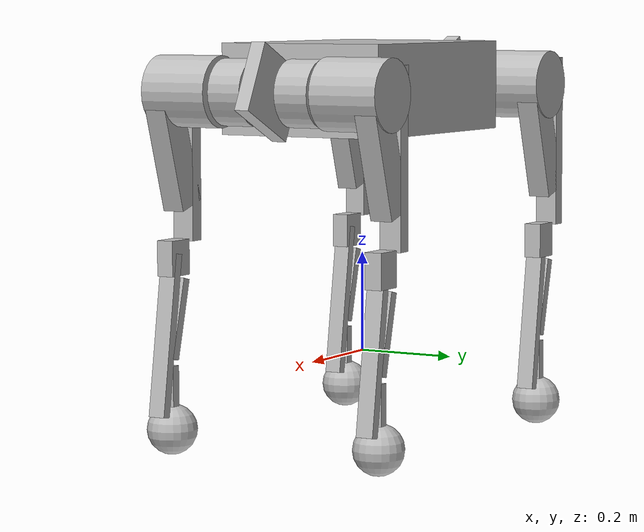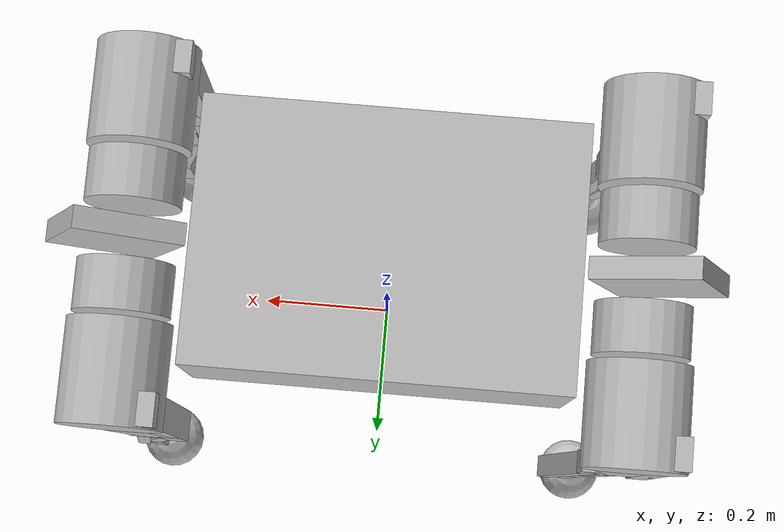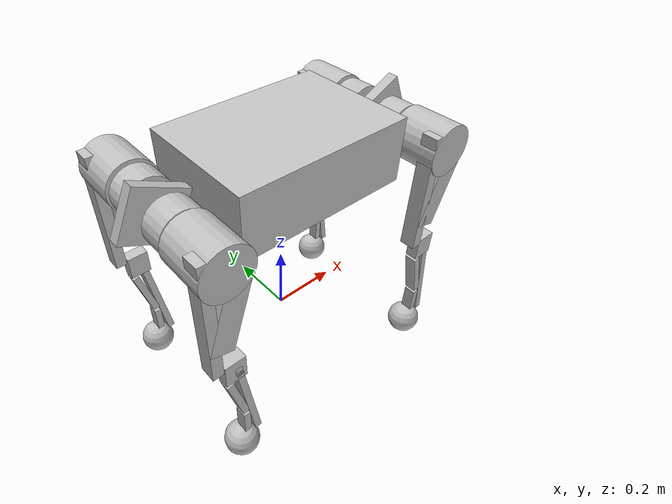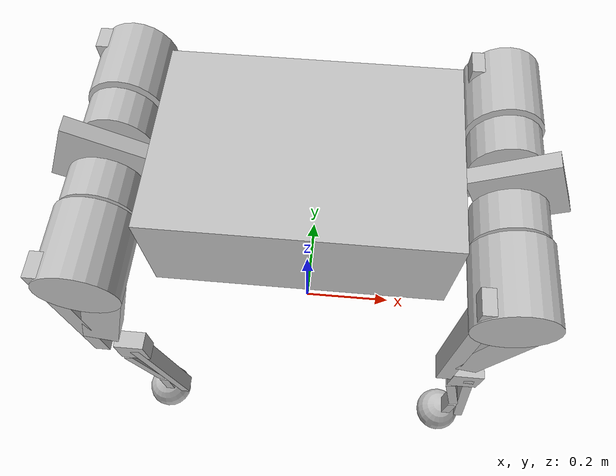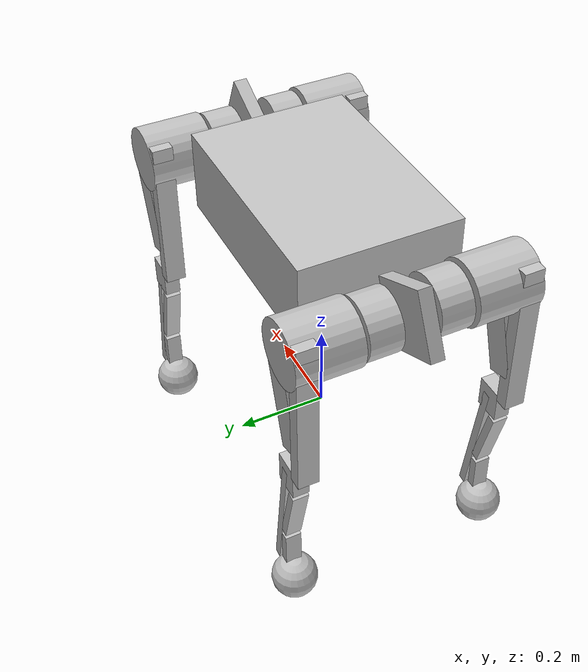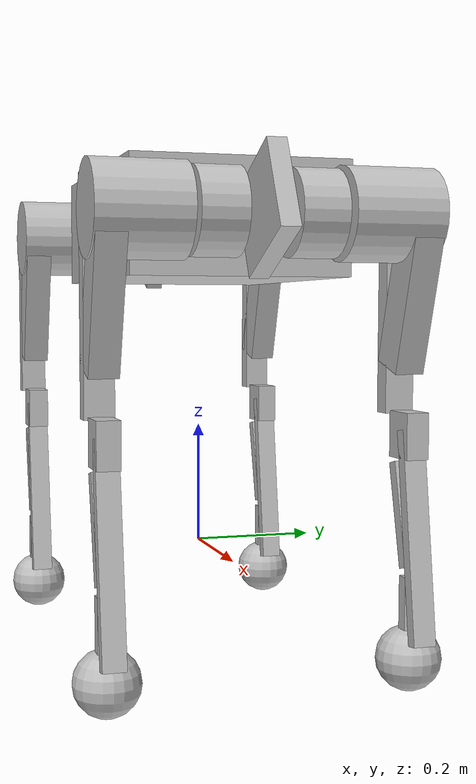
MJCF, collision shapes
<mujoco model="bruce">
  <compiler angle="radian" meshdir="../meshes/" autolimits="true"/>

  <option cone="elliptic" impratio="100" />

  <default>
    <default class="bruce">
      <geom friction="0.4" margin="0.001" condim="1"/>
      <joint axis="0 1 0" damping="0.1" armature="0.01" frictionloss="0.2"/>
      <motor ctrlrange="-100 100"/>
      <default class="abduction">
        <joint axis="1 0 0" range="-0.75 0.75"/>
      </default>

      <default class="hip">
        <default class="front_hip">
          <joint range="-0.69 3"/>
        </default>
        <default class="back_hip">
          <joint range="-0.69 3"/>
        </default>
      </default>

      <default class="knee">
        <joint range="-2.69 -0.8"/>
        <motor ctrlrange="-100 100"/>
      </default>

      <default class="visual">
        <geom type="mesh" contype="0" conaffinity="0" group="2"/>
      </default>

      <default class="collision">
        <geom group="3"/>
        <default class="foot">
          <geom size="0.022" pos="-0.002 0 -0.213" priority="1" condim="6"
            friction="0.4 0.02 0.01"/>
        </default>
      </default>

    </default>
  </default>

  <asset>
    <mesh name="base_link" file="base_link.STL"/>
    <mesh name="FL_hip" file="FL_hip.STL"/>
    <mesh name="FL_thigh" file="FL_thigh.STL"/>
    <mesh name="FL_calf" file="FL_calf.STL"/>
    <mesh name="FL_foot" file="FL_foot.STL"/>
    <mesh name="FR_hip" file="FR_hip.STL"/>
    <mesh name="FR_thigh" file="FR_thigh.STL"/>
    <mesh name="FR_calf" file="FR_calf.STL"/>
    <mesh name="FR_foot" file="FR_foot.STL"/>
    <mesh name="RL_hip" file="RL_hip.STL"/>
    <mesh name="RL_thigh" file="RL_thigh.STL"/>
    <mesh name="RL_calf" file="RL_calf.STL"/>
    <mesh name="RL_foot" file="RL_foot.STL"/>
    <mesh name="RR_hip" file="RR_hip.STL"/>
    <mesh name="RR_thigh" file="RR_thigh.STL"/>
    <mesh name="RR_calf" file="RR_calf.STL"/>
    <mesh name="RR_foot" file="RR_foot.STL"/>
  </asset>

  <worldbody>
    <body name="base_link" pos="0 0 0.445" childclass="bruce">
      <inertial pos="0.0021 0.0007 0.0774" quat="1 0 0 0" mass="26" diaginertia="0.27466 1.0618 1.1825" />
      <freejoint/>
      <geom type="mesh" contype="0" conaffinity="0" group="1" density="0" rgba="0.75294 0.75294 0.75294 1" mesh="base_link" class="visual"/>
      <geom size="0.25 0.175 0.09" pos="0 0 0.09" type="box" rgba="0.75294 0.75294 0.75294 1" class="collision"/>
      <geom size="0.075 0.015 0.07" pos="0.36 0 0.09" quat="0.974794 0 -0.223106 0" type="box" rgba="0.75294 0.75294 0.75294 1" class="collision"/>
      <geom size="0.075 0.015 0.07" pos="-0.36 0 0.09" quat="0.974794 0 0.223106 0" type="box" rgba="0.75294 0.75294 0.75294 1" class="collision"/>
      <site name="imu" pos="0 0 0.114" />

      <body name="FL_hip" pos="0.34075 0.0975 0.088">
        <inertial pos="-0.00576 -0.01672 0" quat="0.473241 0.476794 0.522417 0.525158" mass="2.9" diaginertia="0.00843335 0.00685994 0.00492672"/>
        <joint name="FL_hip_joint" pos="0 0 0" axis="1 0 0" range="-0.75 0.75" actuatorfrcrange="-200 200"/>
        <geom type="mesh" contype="0" conaffinity="0" group="1" density="0" rgba="0.75294 0.75294 0.75294 1" mesh="FL_hip" class="visual"/>
        <geom size="0.065 0.035" pos="0 -0.024 0" quat="0.707388 0.706825 0 0" type="cylinder" rgba="0.75294 0.75294 0.75294 1" class="collision"/>
        <body name="FL_thigh" pos="0 0.134 0">
          <inertial pos="-0.00465 -0.0505 -0.03161" quat="0.963185 0.0890318 -0.0579277 0.246966" mass="5.58" diaginertia="0.0530338 0.0506271 0.0147091"/>
          <joint name="FL_thigh_joint" pos="0 0 0" axis="0 1 0" range="-0.69 3" actuatorfrcrange="-200 200"/>
          <geom type="mesh" contype="0" conaffinity="0" group="1" density="0" rgba="0.75294 0.75294 0.75294 1" mesh="FL_thigh" class="visual"/>
          <geom size="0.07 0.07" pos="0 -0.045 0" quat="0.707388 0.706825 0 0" type="cylinder" rgba="0.75294 0.75294 0.75294 1" class="collision"/>
          <geom size="0.0325 0.0225 0.11" pos="0 0 -0.12" quat="0.988771 0 0.149438 0" type="box" rgba="0.75294 0.75294 0.75294 1" class="collision"/>
          <geom size="0.015 0.0225 0.175" pos="-0.05 0 -0.12" type="box" rgba="0.75294 0.75294 0.75294 1" class="collision"/>
          <body name="FL_calf" pos="0 0 -0.325">
            <inertial pos="0.0126233 0 -0.18171" quat="0.707004 -0.0120756 -0.0120756 0.707004" mass="1.26311" diaginertia="0.0240568 0.0236418 0.000744961"/>
            <joint name="FL_calf_joint" pos="0 0 0" axis="0 1 0" range="-2.7 -0.8" actuatorfrcrange="-200 200"/>
            <geom type="mesh" contype="0" conaffinity="0" group="1" density="0" rgba="0.75294 0.75294 0.75294 1" mesh="FL_calf" class="visual"/>
            <geom size="0.01 0.0175 0.16" pos="0.03 0 -0.15" quat="0.997189 0 -0.0749297 0" type="box" rgba="0.75294 0.75294 0.75294 1" class="collision"/>
            <geom size="0.01 0.0175 0.08" pos="0 0 -0.12" quat="0.992198 0 -0.124675 0" type="box" rgba="0.75294 0.75294 0.75294 1" class="collision"/>
            <geom size="0.03 0.0175 0.035" type="box" rgba="0.75294 0.75294 0.75294 1" class="collision"/>
            <geom size="0.01 0.0175 0.04" pos="0.02 0 -0.25" type="box" rgba="0.75294 0.75294 0.75294 1" class="collision"/>
            <geom size="0.01 0.0175 0.03" pos="0.02 0 -0.32" quat="0.921061 0 -0.389418 0" type="box" rgba="0.75294 0.75294 0.75294 1" class="collision"/>
            <geom pos="1.9903e-05 0 -0.34532" quat="1 0 0 0" type="mesh" contype="0" conaffinity="0" group="1" density="0" rgba="0.75294 0.75294 0.75294 1" mesh="FL_foot" class="visual"/>
            <geom size="0.05" pos="0.0080199 0 -0.33732" rgba="0.75294 0.75294 0.75294 1" class="collision"/>
          </body>
        </body>
      </body>
      <body name="FR_hip" pos="0.34075 -0.0975 0.088">
        <inertial pos="-0.00576 0.01672 0" quat="0.522417 0.525158 0.473241 0.476794" mass="2.9" diaginertia="0.00843335 0.00685994 0.00492672"/>
        <joint name="FR_hip_joint" pos="0 0 0" axis="1 0 0" range="-0.75 0.75" actuatorfrcrange="-200 200"/>
        <geom type="mesh" contype="0" conaffinity="0" group="1" density="0" rgba="0.75294 0.75294 0.75294 1" mesh="FR_hip" class="visual"/>
        <geom size="0.065 0.035" pos="0 0.024 0" quat="0.707388 0.706825 0 0" type="cylinder" rgba="0.75294 0.75294 0.75294 1" class="collision"/>
        <body name="FR_thigh" pos="0 -0.134 0">
          <inertial pos="-0.00465 0.0505 -0.03161" quat="0.963185 -0.0890318 -0.0579277 -0.246966" mass="5.58" diaginertia="0.0530338 0.0506271 0.0147091"/>
          <joint name="FR_thigh_joint" pos="0 0 0" axis="0 1 0" range="-0.69 3" actuatorfrcrange="-200 200"/>
          <geom type="mesh" contype="0" conaffinity="0" group="1" density="0" rgba="0.75294 0.75294 0.75294 1" mesh="FR_thigh" class="visual"/>
          <geom size="0.07 0.07" pos="0 0.045 0" quat="0.707388 0.706825 0 0" type="cylinder" rgba="0.75294 0.75294 0.75294 1" class="collision"/>
          <geom size="0.0325 0.0225 0.11" pos="0 0 -0.12" quat="0.988771 0 0.149438 0" type="box" rgba="0.75294 0.75294 0.75294 1" class="collision"/>
          <geom size="0.015 0.0225 0.175" pos="-0.05 0 -0.12" type="box" rgba="0.75294 0.75294 0.75294 1" class="collision"/>
          <body name="FR_calf" pos="0 0 -0.325">
            <inertial pos="0.0126233 0 -0.18171" quat="0.707004 -0.0120756 -0.0120756 0.707004" mass="1.26311" diaginertia="0.0240568 0.0236418 0.000744961"/>
            <joint name="FR_calf_joint" pos="0 0 0" axis="0 1 0" range="-2.7 -0.8" actuatorfrcrange="-200 200"/>
            <geom type="mesh" contype="0" conaffinity="0" group="1" density="0" rgba="0.75294 0.75294 0.75294 1" mesh="FR_calf" class="visual"/>
            <geom size="0.01 0.0175 0.16" pos="0.03 0 -0.15" quat="0.997189 0 -0.0749297 0" type="box" rgba="0.75294 0.75294 0.75294 1" class="collision"/>
            <geom size="0.01 0.0175 0.08" pos="0 0 -0.12" quat="0.992198 0 -0.124675 0" type="box" rgba="0.75294 0.75294 0.75294 1" class="collision"/>
            <geom size="0.03 0.0175 0.035" type="box" rgba="0.75294 0.75294 0.75294 1" class="collision"/>
            <geom size="0.01 0.0175 0.04" pos="0.02 0 -0.25" type="box" rgba="0.75294 0.75294 0.75294 1" class="collision"/>
            <geom size="0.01 0.0175 0.03" pos="0.02 0 -0.32" quat="0.921061 0 -0.389418 0" type="box" rgba="0.75294 0.75294 0.75294 1" class="collision"/>
            <geom pos="1.9903e-05 0 -0.34532" quat="1 0 0 0" type="mesh" contype="0" conaffinity="0" group="1" density="0" rgba="0.75294 0.75294 0.75294 1" mesh="FR_foot" class="visual"/>
            <geom size="0.05" pos="0.0080199 0 -0.33732" rgba="0.75294 0.75294 0.75294 1" class="collision"/>
          </body>
        </body>
      </body>
      <body name="RL_hip" pos="-0.34075 0.0975 0.088">
        <inertial pos="-0.00576 0.01672 0" quat="0.525158 0.522417 0.476794 0.473241" mass="2.9" diaginertia="0.00843335 0.00685994 0.00492672"/>
        <joint name="RL_hip_joint" pos="0 0 0" axis="1 0 0" range="-0.75 0.75" actuatorfrcrange="-200 200"/>
        <geom type="mesh" contype="0" conaffinity="0" group="1" density="0" rgba="0.75294 0.75294 0.75294 1" mesh="RL_hip" class="visual"/>
        <geom size="0.065 0.035" pos="0 -0.024 0" quat="0.707388 0.706825 0 0" type="cylinder" rgba="0.75294 0.75294 0.75294 1" class="collision"/>
        <body name="RL_thigh" pos="0 0.134 0">
          <inertial pos="-0.00465 -0.0505 -0.03161" quat="0.963185 0.0890318 -0.0579277 0.246966" mass="5.58" diaginertia="0.0530338 0.0506271 0.0147091"/>
          <joint name="RL_thigh_joint" pos="0 0 0" axis="0 1 0" range="-0.69 3" actuatorfrcrange="-200 200"/>
          <geom type="mesh" contype="0" conaffinity="0" group="1" density="0" rgba="0.75294 0.75294 0.75294 1" mesh="RL_thigh" class="visual"/>
          <geom size="0.07 0.07" pos="0 -0.045 0" quat="0.707388 0.706825 0 0" type="cylinder" rgba="0.75294 0.75294 0.75294 1" class="collision"/>
          <geom size="0.0325 0.0225 0.11" pos="0 0 -0.12" quat="0.988771 0 0.149438 0" type="box" rgba="0.75294 0.75294 0.75294 1" class="collision"/>
          <geom size="0.015 0.0225 0.175" pos="-0.05 0 -0.12" type="box" rgba="0.75294 0.75294 0.75294 1" class="collision"/>
          <body name="RL_calf" pos="0 0 -0.325">
            <inertial pos="0.0126233 0 -0.18171" quat="0.707004 -0.0120756 -0.0120756 0.707004" mass="1.26311" diaginertia="0.0240568 0.0236418 0.000744961"/>
            <joint name="RL_calf_joint" pos="0 0 0" axis="0 1 0" range="-2.7 -0.8" actuatorfrcrange="-200 200"/>
            <geom type="mesh" contype="0" conaffinity="0" group="1" density="0" rgba="0.75294 0.75294 0.75294 1" mesh="RL_calf" class="visual"/>
            <geom size="0.01 0.0175 0.16" pos="0.03 0 -0.15" quat="0.997189 0 -0.0749297 0" type="box" rgba="0.75294 0.75294 0.75294 1" class="collision"/>
            <geom size="0.01 0.0175 0.08" pos="0 0 -0.12" quat="0.992198 0 -0.124675 0" type="box" rgba="0.75294 0.75294 0.75294 1" class="collision"/>
            <geom size="0.03 0.0175 0.035" type="box" rgba="0.75294 0.75294 0.75294 1" class="collision"/>
            <geom size="0.01 0.0175 0.04" pos="0.02 0 -0.25" type="box" rgba="0.75294 0.75294 0.75294 1" class="collision"/>
            <geom size="0.01 0.0175 0.03" pos="0.02 0 -0.32" quat="0.921061 0 -0.389418 0" type="box" rgba="0.75294 0.75294 0.75294 1" class="collision"/>
            <geom pos="1.9903e-05 0 -0.34532" quat="1 0 0 0" type="mesh" contype="0" conaffinity="0" group="1" density="0" rgba="0.75294 0.75294 0.75294 1" mesh="RL_foot" class="visual"/>
            <geom size="0.05" pos="0.0080199 0 -0.33732" rgba="0.75294 0.75294 0.75294 1" class="collision"/>
          </body>
        </body>
      </body>
      <body name="RR_hip" pos="-0.34075 -0.0975 0.088">
        <inertial pos="0.0058 0.0167 0" quat="0.5 0.5 0.5 0.5" mass="2.9" diaginertia="0.0085 0.0079 0.0058"/>
        <joint name="RR_hip_joint" pos="0 0 0" axis="1 0 0" range="-0.75 0.75" actuatorfrcrange="-200 200"/>
        <geom type="mesh" contype="0" conaffinity="0" group="1" density="0" rgba="0.75294 0.75294 0.75294 1" mesh="RR_hip" class="visual"/>
        <geom size="0.065 0.035" pos="0 0.024 0" quat="0.707388 0.706825 0 0" type="cylinder" rgba="0.75294 0.75294 0.75294 1" class="collision"/>
        <body name="RR_thigh" pos="0 -0.134 0">
          <inertial pos="-0.00465 0.0505 -0.03161" quat="0.963185 -0.0890318 -0.0579277 -0.246966" mass="5.58" diaginertia="0.0530338 0.0506271 0.0147091"/>
          <joint name="RR_thigh_joint" pos="0 0 0" axis="0 1 0" range="-0.69 3" actuatorfrcrange="-200 200"/>
          <geom type="mesh" contype="0" conaffinity="0" group="1" density="0" rgba="0.75294 0.75294 0.75294 1" mesh="RR_thigh" class="visual"/>
          <geom size="0.07 0.07" pos="0 0.045 0" quat="0.707388 0.706825 0 0" type="cylinder" rgba="0.75294 0.75294 0.75294 1" class="collision"/>
          <geom size="0.0325 0.0225 0.11" pos="0 0 -0.12" quat="0.988771 0 0.149438 0" type="box" rgba="0.75294 0.75294 0.75294 1" class="collision"/>
          <geom size="0.015 0.0225 0.175" pos="-0.05 0 -0.12" type="box" rgba="0.75294 0.75294 0.75294 1" class="collision"/>
          <body name="RR_calf" pos="0 0 -0.325">
            <inertial pos="0.0126233 0 -0.18171" quat="0.707004 -0.0120756 -0.0120756 0.707004" mass="1.26311" diaginertia="0.0240568 0.0236418 0.000744961"/>
            <joint name="RR_calf_joint" pos="0 0 0" axis="0 1 0" range="-2.7 -0.8" actuatorfrcrange="-200 200"/>
            <geom type="mesh" contype="0" conaffinity="0" group="1" density="0" rgba="0.75294 0.75294 0.75294 1" mesh="RR_calf" class="visual"/>
            <geom size="0.01 0.0175 0.16" pos="0.03 0 -0.15" quat="0.997189 0 -0.0749297 0" type="box" rgba="0.75294 0.75294 0.75294 1" class="collision"/>
            <geom size="0.01 0.0175 0.08" pos="0 0 -0.12" quat="0.992198 0 -0.124675 0" type="box" rgba="0.75294 0.75294 0.75294 1" class="collision"/>
            <geom size="0.03 0.0175 0.035" type="box" rgba="0.75294 0.75294 0.75294 1" class="collision"/>
            <geom size="0.01 0.0175 0.04" pos="0.02 0 -0.25" type="box" rgba="0.75294 0.75294 0.75294 1" class="collision"/>
            <geom size="0.01 0.0175 0.03" pos="0.02 0 -0.32" quat="0.921061 0 -0.389418 0" type="box" rgba="0.75294 0.75294 0.75294 1" class="collision"/>
            <geom pos="1.9903e-05 0 -0.34532" quat="1 0 0 0" type="mesh" contype="0" conaffinity="0" group="1" density="0" rgba="0.75294 0.75294 0.75294 1" mesh="RR_foot" class="visual"/>
            <geom size="0.05" pos="0.0080199 0 -0.33732" rgba="0.75294 0.75294 0.75294 1" class="collision"/>
          </body>
        </body>
      </body>
    </body>
  </worldbody>
</mujoco>
